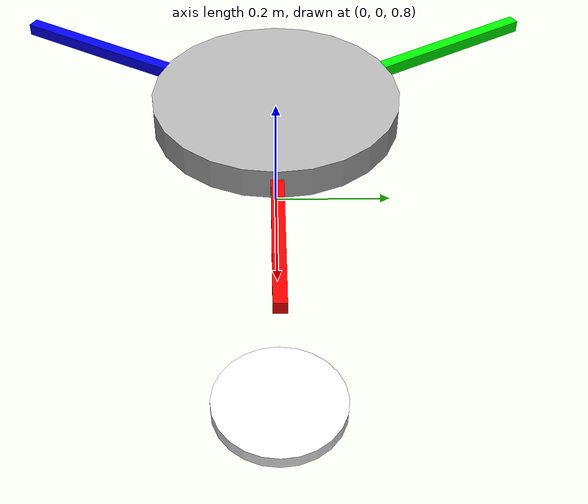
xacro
<?xml version="1.0"?>
<robot xmlns:xacro="http://www.ros.org/wiki/xacro" name="delta_robot">

  <!-- Robot Base Parameters -->
  <xacro:property name="base_radius" value="0.2"/>
  <xacro:property name="base_height" value="0.05"/>
  <xacro:property name="arm_length" value="0.3"/>
  <xacro:property name="platform_radius" value="0.1"/>
  <xacro:property name="platform_height" value="0.02"/>

  <!-- Include Gazebo ROS control plugin -->
  <xacro:include filename="$(find cell_description)/urdf/delta_robot.gazebo.xacro"/>
  <xacro:include filename="$(find cell_description)/urdf/delta_robot.transmission.xacro"/>

  <!-- Robot Base Link -->
  <link name="world"/>

  <joint name="base_joint" type="fixed">
    <parent link="world"/>
    <child link="base_link"/>
    <origin xyz="0 0 1.0" rpy="0 0 0"/>
  </joint>

  <link name="base_link">
    <visual>
      <geometry>
        <cylinder radius="${base_radius}" length="${base_height}"/>
      </geometry>
      <material name="gray">
        <color rgba="0.7 0.7 0.7 1.0"/>
      </material>
    </visual>
    <collision>
      <geometry>
        <cylinder radius="${base_radius}" length="${base_height}"/>
      </geometry>
    </collision>
    <inertial>
      <mass value="1.0"/>
      <inertia ixx="0.01" ixy="0" ixz="0" iyy="0.01" iyz="0" izz="0.01"/>
    </inertial>
  </link>

  <!-- Arm 1 -->
  <joint name="arm1_joint" type="revolute">
    <parent link="base_link"/>
    <child link="arm1"/>
    <origin xyz="${base_radius-0.05} 0 0" rpy="0 0 0"/>
    <axis xyz="1 0 0"/>
    <limit lower="-1.57" upper="1.57" effort="10" velocity="2"/>
  </joint>

  <link name="arm1">
    <visual>
      <geometry>
        <box size="${arm_length} 0.02 0.02"/>
      </geometry>
      <origin xyz="${arm_length/2} 0 0" rpy="0 0 0"/>
      <material name="red">
        <color rgba="1 0 0 1"/>
      </material>
    </visual>
    <collision>
      <geometry>
        <box size="${arm_length} 0.02 0.02"/>
      </geometry>
      <origin xyz="${arm_length/2} 0 0" rpy="0 0 0"/>
    </collision>
    <inertial>
      <mass value="0.1"/>
      <inertia ixx="0.001" ixy="0" ixz="0" iyy="0.001" iyz="0" izz="0.001"/>
    </inertial>
  </link>

  <!-- Arm 2 -->
  <joint name="arm2_joint" type="revolute">
    <parent link="base_link"/>
    <child link="arm2"/>
    <origin xyz="-${base_radius/2} ${base_radius*0.866} 0" rpy="0 0 2.0944"/>
    <axis xyz="1 0 0"/>
    <limit lower="-1.57" upper="1.57" effort="10" velocity="2"/>
  </joint>

  <link name="arm2">
    <visual>
      <geometry>
        <box size="${arm_length} 0.02 0.02"/>
      </geometry>
      <origin xyz="${arm_length/2} 0 0" rpy="0 0 0"/>
      <material name="green">
        <color rgba="0 1 0 1"/>
      </material>
    </visual>
    <collision>
      <geometry>
        <box size="${arm_length} 0.02 0.02"/>
      </geometry>
      <origin xyz="${arm_length/2} 0 0" rpy="0 0 0"/>
    </collision>
    <inertial>
      <mass value="0.1"/>
      <inertia ixx="0.001" ixy="0" ixz="0" iyy="0.001" iyz="0" izz="0.001"/>
    </inertial>
  </link>

  <!-- Arm 3 -->
  <joint name="arm3_joint" type="revolute">
    <parent link="base_link"/>
    <child link="arm3"/>
    <origin xyz="-${base_radius/2} -${base_radius*0.866} 0" rpy="0 0 -2.0944"/>
    <axis xyz="1 0 0"/>
    <limit lower="-1.57" upper="1.57" effort="10" velocity="2"/>
  </joint>

  <link name="arm3">
    <visual>
      <geometry>
        <box size="${arm_length} 0.02 0.02"/>
      </geometry>
      <origin xyz="${arm_length/2} 0 0" rpy="0 0 0"/>
      <material name="blue">
        <color rgba="0 0 1 1"/>
      </material>
    </visual>
    <collision>
      <geometry>
        <box size="${arm_length} 0.02 0.02"/>
      </geometry>
      <origin xyz="${arm_length/2} 0 0" rpy="0 0 0"/>
    </collision>
    <inertial>
      <mass value="0.1"/>
      <inertia ixx="0.001" ixy="0" ixz="0" iyy="0.001" iyz="0" izz="0.001"/>
    </inertial>
  </link>

  <!-- End effector platform -->
  <joint name="platform_joint" type="fixed">
    <parent link="arm1"/>
    <child link="platform"/>
    <origin xyz="${arm_length} 0 -0.2" rpy="0 0 0"/>
  </joint>

  <link name="platform">
    <visual>
      <geometry>
        <cylinder radius="${platform_radius}" length="${platform_height}"/>
      </geometry>
      <material name="white">
        <color rgba="1 1 1 1"/>
      </material>
    </visual>
    <collision>
      <geometry>
        <cylinder radius="${platform_radius}" length="${platform_height}"/>
      </geometry>
    </collision>
    <inertial>
      <mass value="0.2"/>
      <inertia ixx="0.001" ixy="0" ixz="0" iyy="0.001" iyz="0" izz="0.001"/>
    </inertial>
  </link>

  <!-- Tool Center Point -->
  <joint name="tool_joint" type="fixed">
    <parent link="platform"/>
    <child link="tool_link"/>
    <origin xyz="0 0 -0.02" rpy="0 0 0"/>
  </joint>

  <link name="tool_link">
    <visual>
      <geometry>
        <sphere radius="0.01"/>
      </geometry>
      <material name="black">
        <color rgba="0 0 0 1"/>
      </material>
    </visual>
    <collision>
      <geometry>
        <sphere radius="0.01"/>
      </geometry>
    </collision>
    <inertial>
      <mass value="0.01"/>
      <inertia ixx="0.0001" ixy="0" ixz="0" iyy="0.0001" iyz="0" izz="0.0001"/>
    </inertial>
  </link>

  <!-- End-effector frame (for MoveIt) -->
  <link name="ee_link"/>

  <joint name="ee_joint" type="fixed">
    <parent link="tool_link"/>
    <child link="ee_link"/>
    <origin xyz="0 0 0" rpy="0 0 0"/>
  </joint>

</robot>
